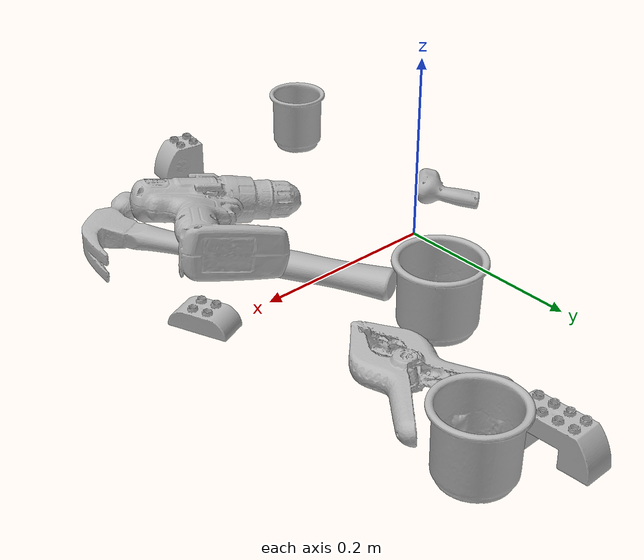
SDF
<sdf version="1.4">
  <world name="default">
    <light name="light1" type="point">
      <pose>0 0 1 0 0 0</pose>
      <diffuse>3 3 3 1</diffuse>
      <specular>3 3 3 1</specular>
    </light>
    <light name="light2" type="point">
      <pose>0 0.5 2 0 0 0</pose>
      <diffuse>1 1 1 1</diffuse>
      <specular>1 1 1 1</specular>
    </light>
    <light name="light3" type="point">
      <pose>0 0.5 2 0 0 0</pose>
      <diffuse>3 3 3 1</diffuse>
      <specular>3 3 3 1</specular>
    </light>
    <scene>
      <ambient>0.7 0.7 0.7</ambient>
    </scene>
    <model name="cup1">
      <link name="link_cup1">
        <collision name="default">
          <geometry>
            <mesh>
              <uri>model://g_cups/collision_meshes/collision.obj</uri>
              <scale>1.0 1.0 1.0</scale>
            </mesh>
          </geometry>
          <surface>
            <friction>
              <ode>
                <mu>0.5</mu>
                <mu2>0.5</mu2>
              </ode>
            </friction>
          <contact>
        <ode>
            <max_vel>0</max_vel>
            <min_depth>0.0001</min_depth>
            <kp>1e8</kp>
        </ode>
    </contact></surface>
        </collision>
        <visual name="default">
          <geometry>
            <mesh>
              <uri>model://g_cups/visual_meshes/visual.dae</uri>
              <scale>1.0 1.0 1.0</scale>
            </mesh>
          </geometry>
        </visual>
        <inertial>
          <mass>0.057625629007816315</mass>
          <pose>-0.0007946282275952399 -4.206500670989044e-05 -0.0021329375449568033 -0.21382697289054745 -0.3141031271963666 0.3112149002706268</pose>
          <inertia>
            <ixx>6.726202e-05</ixx>
            <iyy>6.7033216e-05</iyy>
            <izz>6.967186e-05</izz>
            <ixy>0</ixy>
            <ixz>0</ixz>
            <iyz>0</iyz>
          </inertia>
        </inertial>
      </link>
      <pose>0.2419651299715042 0.3067101836204529 0.03720300644636154 4.1198459258205295e-08 8.476124845833629e-08 -2.88023797093454</pose>
    </model>
    <model name="cup2">
      <link name="link_cup2">
        <collision name="default">
          <geometry>
            <mesh>
              <uri>model://c_cups/collision_meshes/collision.obj</uri>
              <scale>1.0 1.0 1.0</scale>
            </mesh>
          </geometry>
          <surface>
            <friction>
              <ode>
                <mu>0.5</mu>
                <mu2>0.5</mu2>
              </ode>
            </friction>
          <contact>
        <ode>
            <max_vel>0</max_vel>
            <min_depth>0.0001</min_depth>
            <kp>1e8</kp>
        </ode>
    </contact></surface>
        </collision>
        <visual name="default">
          <geometry>
            <mesh>
              <uri>model://c_cups/visual_meshes/visual.dae</uri>
              <scale>1.0 1.0 1.0</scale>
            </mesh>
          </geometry>
        </visual>
        <inertial>
          <mass>0.03477548435330391</mass>
          <pose>0.0007237261161208153 0.0020153902005404234 -0.0012750983005389571 0.30215732346046187 0.013461711857135551 -0.08771879968331305</pose>
          <inertia>
            <ixx>2.5862058e-05</ixx>
            <iyy>2.540504e-05</iyy>
            <izz>2.2871589e-05</izz>
            <ixy>0</ixy>
            <ixz>0</ixz>
            <iyz>0</iyz>
          </inertia>
        </inertial>
      </link>
      <pose>-0.04770922660827637 -0.24276748299598694 0.033459071069955826 1.1880184050699296e-05 4.322008571465841e-06 -1.6577854977278792</pose>
    </model>
    <model name="cup3">
      <link name="link_cup3">
        <collision name="default">
          <geometry>
            <mesh>
              <uri>model://h_cups/collision_meshes/collision.obj</uri>
              <scale>1.0 1.0 1.0</scale>
            </mesh>
          </geometry>
          <surface>
            <friction>
              <ode>
                <mu>0.5</mu>
                <mu2>0.5</mu2>
              </ode>
            </friction>
          <contact>
        <ode>
            <max_vel>0</max_vel>
            <min_depth>0.0001</min_depth>
            <kp>1e8</kp>
        </ode>
    </contact></surface>
        </collision>
        <visual name="default">
          <geometry>
            <mesh>
              <uri>model://h_cups/visual_meshes/visual.dae</uri>
              <scale>1.0 1.0 1.0</scale>
            </mesh>
          </geometry>
        </visual>
        <inertial>
          <mass>0.050017159432172775</mass>
          <pose>-2.702731035242323e-05 0.0002301866770721972 -0.0018405388109385967 -0.024362003715272553 0.06545245272055236 0.12885201823743497</pose>
          <inertia>
            <ixx>6.459484e-05</ixx>
            <iyy>6.382401e-05</iyy>
            <izz>6.774227e-05</izz>
            <ixy>0</ixy>
            <ixz>0</ixz>
            <iyz>0</iyz>
          </inertia>
        </inertial>
      </link>
      <pose>0.10745016485452652 0.13633659482002258 0.03775801509618759 1.4645467084806137e-07 -5.07897531082624e-08 -2.3777927176728246</pose>
    </model>
    <model name="toy1">
      <link name="link_toy1">
        <collision name="default">
          <geometry>
            <mesh>
              <uri>model://e_lego_duplo/collision_meshes/collision.obj</uri>
              <scale>1.0 1.0 1.0</scale>
            </mesh>
          </geometry>
          <surface>
            <friction>
              <ode>
                <mu>0.5</mu>
                <mu2>0.5</mu2>
              </ode>
            </friction>
          <contact>
        <ode>
            <max_vel>0</max_vel>
            <min_depth>0.0001</min_depth>
            <kp>1e8</kp>
        </ode>
    </contact></surface>
        </collision>
        <visual name="default">
          <geometry>
            <mesh>
              <uri>model://e_lego_duplo/visual_meshes/visual.dae</uri>
              <scale>1.0 1.0 1.0</scale>
            </mesh>
          </geometry>
        </visual>
        <inertial>
          <mass>0.09100330621004105</mass>
          <pose>0.0003256048948969692 0.00023485418932978064 0.0019521461799740791 -0.02256778535698338 -6.825395529084007e-05 -0.0076251622764869605</pose>
          <inertia>
            <ixx>1.897719e-05</ixx>
            <iyy>7.788726e-05</iyy>
            <izz>7.584653e-05</izz>
            <ixy>0</ixy>
            <ixz>0</ixz>
            <iyz>0</iyz>
          </inertia>
        </inertial>
      </link>
      <pose>0.17005649209022522 0.32770368456840515 0.021808983758091927 -5.596563890499068e-08 9.727543673174738e-08 1.624014587823882</pose>
    </model>
    <model name="toy2">
      <link name="link_toy2">
        <collision name="default">
          <geometry>
            <mesh>
              <uri>model://b_toy_airplane/collision_meshes/collision.obj</uri>
              <scale>0.5 0.5 0.5</scale>
            </mesh>
          </geometry>
          <surface>
            <friction>
              <ode>
                <mu>0.5</mu>
                <mu2>0.5</mu2>
              </ode>
            </friction>
          <contact>
        <ode>
            <max_vel>0</max_vel>
            <min_depth>0.0001</min_depth>
            <kp>1e8</kp>
        </ode>
    </contact></surface>
        </collision>
        <visual name="default">
          <geometry>
            <mesh>
              <uri>model://b_toy_airplane/visual_meshes/visual.dae</uri>
              <scale>0.5 0.5 0.5</scale>
            </mesh>
          </geometry>
        </visual>
        <inertial>
          <mass>0.06363805383443832</mass>
          <pose>0.002540681976824999 0.0020077931694686413 0.004771532956510782 -0.0400181041712346 -0.04022185546555606 -0.5601502891427816</pose>
          <inertia>
            <ixx>2.9536302e-05</ixx>
            <iyy>1.1805946e-05</iyy>
            <izz>3.6746103e-05</izz>
            <ixy>0</ixy>
            <ixz>0</ixz>
            <iyz>0</iyz>
          </inertia>
        </inertial>
      </link>
      <pose>-0.07171779125928879 -0.03271195665001869 0.008488936349749565 0.18487653661027623 0.1134990945461998 -2.425446663157418</pose>
    </model>
    <model name="toy3">
      <link name="link_toy3">
        <collision name="default">
          <geometry>
            <mesh>
              <uri>model://d_lego_duplo/collision_meshes/collision.obj</uri>
              <scale>1.0 1.0 1.0</scale>
            </mesh>
          </geometry>
          <surface>
            <friction>
              <ode>
                <mu>0.5</mu>
                <mu2>0.5</mu2>
              </ode>
            </friction>
          <contact>
        <ode>
            <max_vel>0</max_vel>
            <min_depth>0.0001</min_depth>
            <kp>1e8</kp>
        </ode>
    </contact></surface>
        </collision>
        <visual name="default">
          <geometry>
            <mesh>
              <uri>model://d_lego_duplo/visual_meshes/visual.dae</uri>
              <scale>1.0 1.0 1.0</scale>
            </mesh>
          </geometry>
        </visual>
        <inertial>
          <mass>0.05334000289440155</mass>
          <pose>0.002830563811585307 0.0001636617089388892 0.0008589810458943248 0.0801090676593232 -0.3835525121717052 0.0010296416750687279</pose>
          <inertia>
            <ixx>1.0325837e-05</ixx>
            <iyy>1.4655165e-05</iyy>
            <izz>1.4132847e-05</izz>
            <ixy>0</ixy>
            <ixz>0</ixz>
            <iyz>0</iyz>
          </inertia>
        </inertial>
      </link>
      <pose>0.10497216135263443 -0.2743397653102875 0.021739725023508072 -4.7817338199740334e-05 -4.9453043826491406e-06 2.982604238568599</pose>
    </model>
    <model name="toy4">
      <link name="link_toy4">
        <collision name="default">
          <geometry>
            <mesh>
              <uri>model://a_lego_duplo/collision_meshes/collision.obj</uri>
              <scale>1.0 1.0 1.0</scale>
            </mesh>
          </geometry>
          <surface>
            <friction>
              <ode>
                <mu>0.5</mu>
                <mu2>0.5</mu2>
              </ode>
            </friction>
          <contact>
        <ode>
            <max_vel>0</max_vel>
            <min_depth>0.0001</min_depth>
            <kp>1e8</kp>
        </ode>
    </contact></surface>
        </collision>
        <visual name="default">
          <geometry>
            <mesh>
              <uri>model://a_lego_duplo/visual_meshes/visual.dae</uri>
              <scale>1.0 1.0 1.0</scale>
            </mesh>
          </geometry>
        </visual>
        <inertial>
          <mass>0.02371947281062603</mass>
          <pose>-0.00011337659088894725 0.00018517536227591336 0.00036926098982803524 -0.014117032318495473 -0.00012566219654468525 6.139472672246545e-05</pose>
          <inertia>
            <ixx>3.0410272e-06</ixx>
            <iyy>6.8125664e-06</iyy>
            <izz>8.438875e-06</izz>
            <ixy>0</ixy>
            <ixz>0</ixz>
            <iyz>0</iyz>
          </inertia>
        </inertial>
      </link>
      <pose>0.27183929085731506 -0.010143902152776718 0.012112004682421684 -2.1537236494413768e-07 -3.4072502788552977e-07 1.9521872654993668</pose>
    </model>
    <model name="hardware1">
      <link name="link_hardware1">
        <collision name="default">
          <geometry>
            <mesh>
              <uri>model://hammer/collision_meshes/collision.obj</uri>
              <scale>1.0 1.0 1.0</scale>
            </mesh>
          </geometry>
          <surface>
            <friction>
              <ode>
                <mu>0.5</mu>
                <mu2>0.5</mu2>
              </ode>
            </friction>
          <contact>
        <ode>
            <max_vel>0</max_vel>
            <min_depth>0.0001</min_depth>
            <kp>1e8</kp>
        </ode>
    </contact></surface>
        </collision>
        <visual name="default">
          <geometry>
            <mesh>
              <uri>model://hammer/visual_meshes/visual.dae</uri>
              <scale>1.0 1.0 1.0</scale>
            </mesh>
          </geometry>
        </visual>
        <inertial>
          <mass>0.21542595326900482</mass>
          <pose>0.009415775537490845 -0.011892358772456646 -0.00012350629549473524 0.02315578421630864 -0.004792165572519315 -0.012760317567756519</pose>
          <inertia>
            <ixx>9.2278024e-05</ixx>
            <iyy>0.0025004656</iyy>
            <izz>0.002572105</izz>
            <ixy>0</ixy>
            <ixz>0</ixz>
            <iyz>0</iyz>
          </inertia>
        </inertial>
      </link>
      <pose>0.20016807317733765 -0.07649675011634827 0.016265753656625748 -0.005157800220211044 -0.001372585455226647 -1.0675164994671422</pose>
    </model>
    <model name="hardware2">
      <link name="link_hardware2">
        <collision name="default">
          <geometry>
            <mesh>
              <uri>model://large_clamp/collision_meshes/collision.obj</uri>
              <scale>1.0 1.0 1.0</scale>
            </mesh>
          </geometry>
          <surface>
            <friction>
              <ode>
                <mu>0.5</mu>
                <mu2>0.5</mu2>
              </ode>
            </friction>
          <contact>
        <ode>
            <max_vel>0</max_vel>
            <min_depth>0.0001</min_depth>
            <kp>1e8</kp>
        </ode>
    </contact></surface>
        </collision>
        <visual name="default">
          <geometry>
            <mesh>
              <uri>model://large_clamp/visual_meshes/visual.dae</uri>
              <scale>1.0 1.0 1.0</scale>
            </mesh>
          </geometry>
        </visual>
        <inertial>
          <mass>0.16898278892040253</mass>
          <pose>0.006369357462972403 0.00035856629256159067 -0.00018398034444544464 -0.002133075920149734 0.009671594117503977 0.026633212091596442</pose>
          <inertia>
            <ixx>0.00014908903</ixx>
            <iyy>0.00028312797</iyy>
            <izz>0.00040958088</izz>
            <ixy>0</ixy>
            <ixz>0</ixz>
            <iyz>0</iyz>
          </inertia>
        </inertial>
      </link>
      <pose>0.1995270699262619 0.18877333402633667 0.01850411668419838 -0.012190207909880619 0.04692358949485658 -1.7460059529985537</pose>
    </model>
    <model name="hardware3">
      <link name="link_hardware3">
        <collision name="default">
          <geometry>
            <mesh>
              <uri>model://power_drill/collision_meshes/collision.obj</uri>
              <scale>1.0 1.0 1.0</scale>
            </mesh>
          </geometry>
          <surface>
            <friction>
              <ode>
                <mu>0.5</mu>
                <mu2>0.5</mu2>
              </ode>
            </friction>
          <contact>
        <ode>
            <max_vel>0</max_vel>
            <min_depth>0.0001</min_depth>
            <kp>1e8</kp>
        </ode>
    </contact></surface>
        </collision>
        <visual name="default">
          <geometry>
            <mesh>
              <uri>model://power_drill/visual_meshes/visual.dae</uri>
              <scale>1.0 1.0 1.0</scale>
            </mesh>
          </geometry>
        </visual>
        <inertial>
          <mass>0.7224003672599792</mass>
          <pose>-0.014780545607209206 0.014369428157806396 0.0012414171360433102 0.0046091635101465946 0.00407302394444766 -0.18362692290061644</pose>
          <inertia>
            <ixx>0.002943816</ixx>
            <iyy>0.0011582379</iyy>
            <izz>0.0038878287</izz>
            <ixy>0</ixy>
            <ixz>0</ixz>
            <iyz>0</iyz>
          </inertia>
        </inertial>
      </link>
      <pose>0.17212483286857605 -0.09293563663959503 0.03900011256337166 -0.15228268945862483 0.12819098991127276 2.6795538692433167</pose>
    </model>
  <physics type="ode">
      <max_contacts>50</max_contacts>
      <ode>
        <solver>
          <type>quick</type>
          <iters>75</iters>
        </solver>
        <constraints>
          <contact_max_correcting_vel>0</contact_max_correcting_vel>
          <contact_surface_layer>0</contact_surface_layer>
        </constraints>
      </ode>
    </physics></world>
</sdf>
